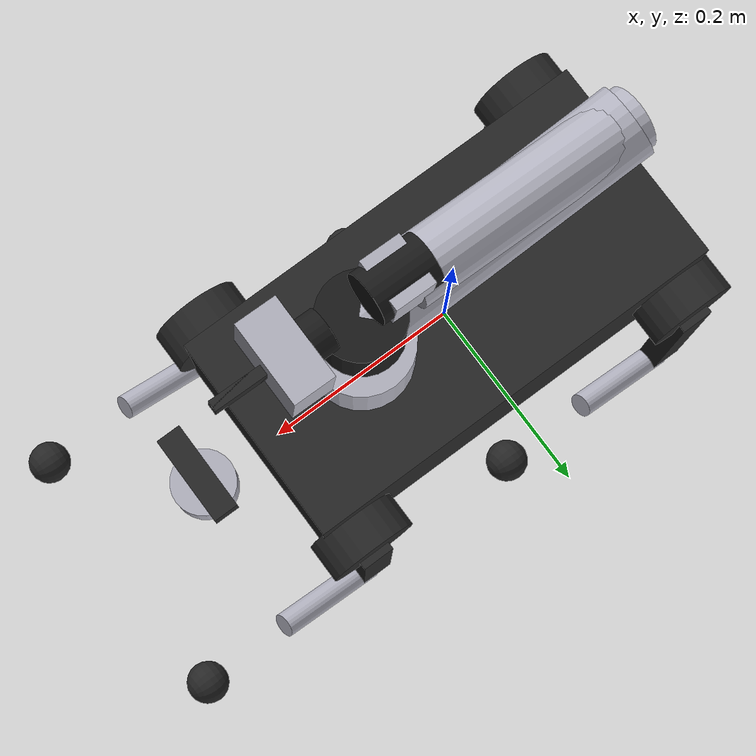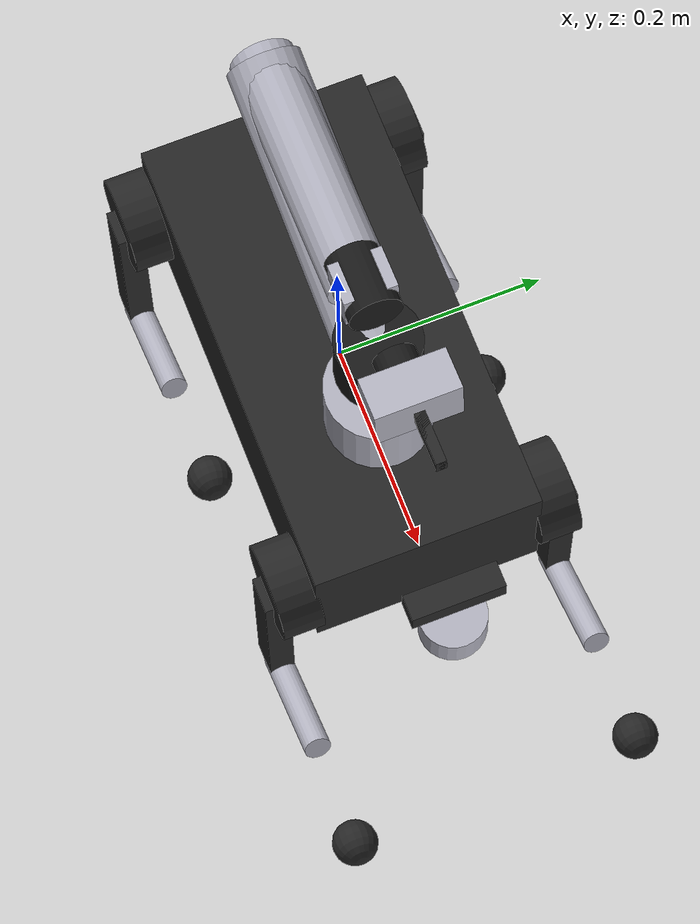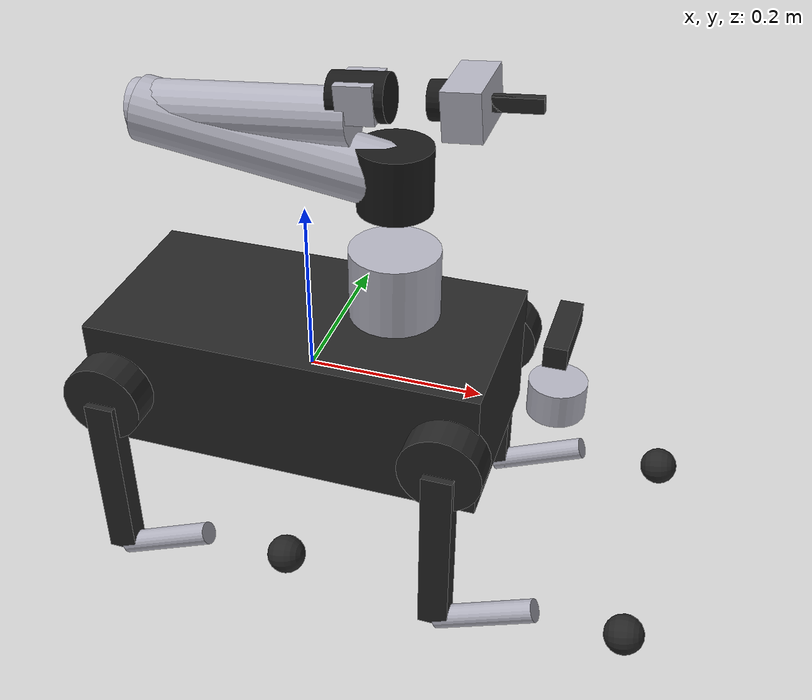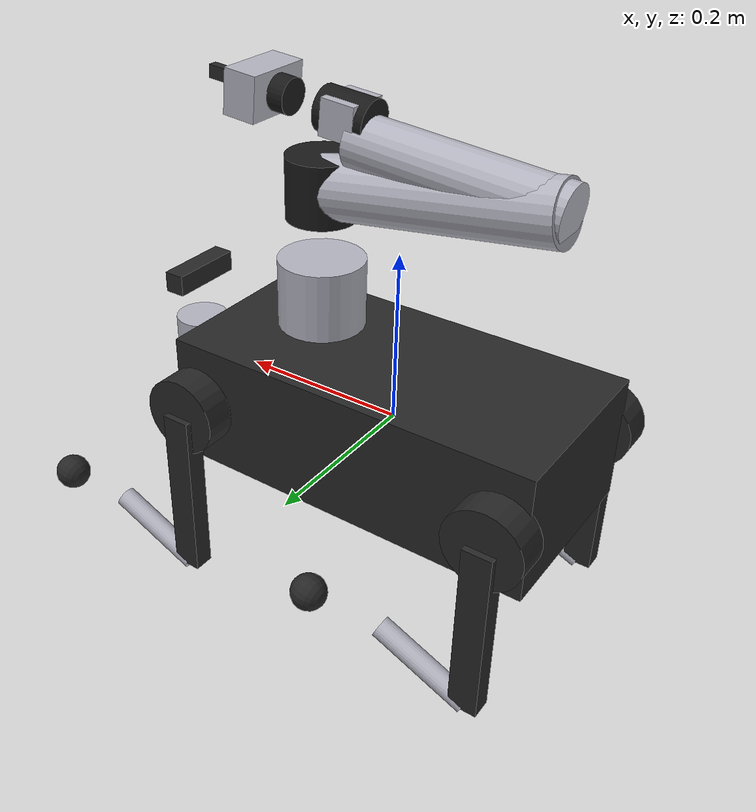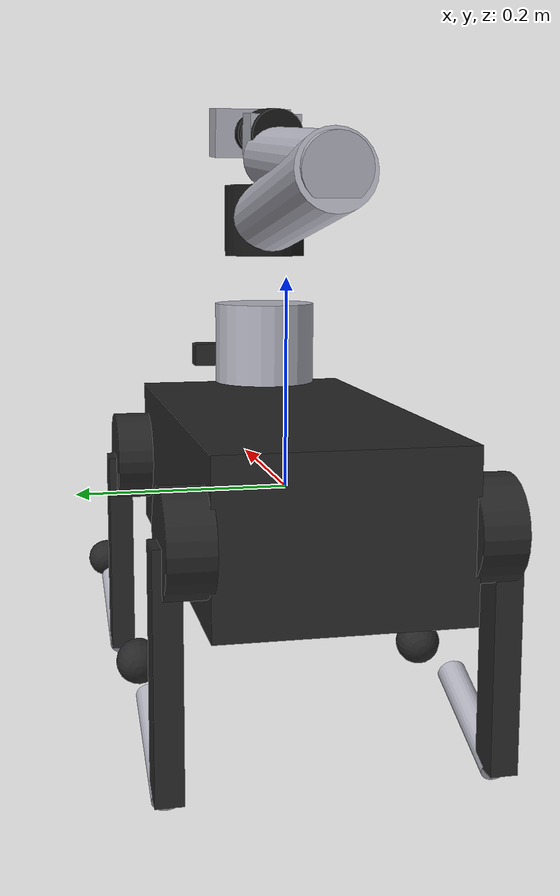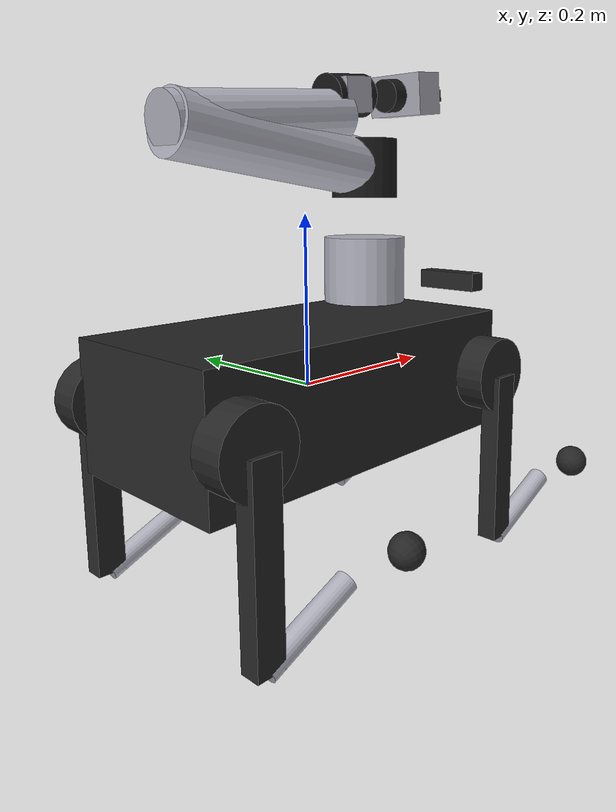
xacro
<?xml version="1.0"?>
<robot name="as2_piper" xmlns:xacro="http://www.ros.org/wiki/xacro">

  <!-- Unitree AS2 Industrial Quadruped Robot with AgileX PiPER Robotic Arm -->
  <!-- Computer Graphics and Vision Lab (CGV) - Isaac Sim 6.2.0 Integration  -->
  <!-- Unified 20-DOF Mobile Manipulator Model                              -->

  <!-- Parameters -->
  <xacro:property name="arm_mount_x" value="0.10" />
  <xacro:property name="arm_mount_y" value="0.0" />
  <xacro:property name="arm_mount_z" value="0.13" />

  <!-- Base Trunk of Unitree AS2 (Industrial Payload 18.5kg) -->
  <link name="base">
    <inertial>
      <origin xyz="0.015 0.0 -0.005" rpy="0 0 0"/>
      <mass value="18.5"/>
      <inertia ixx="0.075" ixy="0.0002" ixz="0.0005" iyy="0.210" iyz="0.00001" izz="0.235"/>
    </inertial>
    <visual>
      <origin xyz="0 0 0" rpy="0 0 0"/>
      <geometry>
        <box size="0.45 0.22 0.15"/>
      </geometry>
      <material name="matte_black">
        <color rgba="0.15 0.15 0.15 1.0"/>
      </material>
    </visual>
    <collision>
      <origin xyz="0 0 0" rpy="0 0 0"/>
      <geometry>
        <box size="0.45 0.22 0.15"/>
      </geometry>
    </collision>
  </link>

  <!-- Mounting plate for PiPER on AS2 Top Deck -->
  <joint name="as2_to_piper_mount" type="fixed">
    <origin xyz="${arm_mount_x} ${arm_mount_y} ${arm_mount_z}" rpy="0 0 0"/>
    <parent link="base"/>
    <child link="arm_base_link"/>
  </joint>

  <!-- AgileX PiPER Arm Base -->
  <link name="arm_base_link">
    <inertial>
      <origin xyz="-0.00474 0.000026 0.04145" rpy="0 0 0"/>
      <mass value="0.85"/>
      <inertia ixx="0.0012" ixy="0.0" ixz="0.0" iyy="0.0013" iyz="0.0" izz="0.0009"/>
    </inertial>
    <visual>
      <origin xyz="0 0 0" rpy="0 0 0"/>
      <geometry>
        <cylinder radius="0.05" length="0.08"/>
      </geometry>
      <material name="metallic">
        <color rgba="0.7 0.7 0.75 1.0"/>
      </material>
    </visual>
    <collision>
      <origin xyz="0 0 0" rpy="0 0 0"/>
      <geometry>
        <cylinder radius="0.05" length="0.08"/>
      </geometry>
    </collision>
  </link>

  <!-- Joint 1: Base Yaw -->
  <joint name="joint1" type="revolute">
    <origin xyz="0 0 0.123" rpy="0 0 0"/>
    <parent link="arm_base_link"/>
    <child link="link1"/>
    <axis xyz="0 0 1"/>
    <limit lower="-2.618" upper="2.168" effort="100.0" velocity="5.0"/>
  </joint>

  <link name="link1">
    <inertial>
      <origin xyz="0 0 0" rpy="0 0 0"/>
      <mass value="0.6"/>
      <inertia ixx="0.001" ixy="0" ixz="0" iyy="0.001" iyz="0" izz="0.0008"/>
    </inertial>
    <visual>
      <origin xyz="0 0 0" rpy="0 0 0"/>
      <geometry>
        <cylinder radius="0.04" length="0.07"/>
      </geometry>
      <material name="black">
        <color rgba="0.1 0.1 0.1 1.0"/>
      </material>
    </visual>
    <collision>
      <origin xyz="0 0 0" rpy="0 0 0"/>
      <geometry>
        <cylinder radius="0.04" length="0.07"/>
      </geometry>
    </collision>
  </link>

  <!-- Joint 2: Shoulder Pitch -->
  <joint name="joint2" type="revolute">
    <origin xyz="0 0 0" rpy="1.5708 -0.1359 -3.1416"/>
    <parent link="link1"/>
    <child link="link2"/>
    <axis xyz="0 0 1"/>
    <limit lower="0.0" upper="3.14" effort="100.0" velocity="5.0"/>
  </joint>

  <link name="link2">
    <inertial>
      <origin xyz="0.14 0 0" rpy="0 0 0"/>
      <mass value="0.8"/>
      <inertia ixx="0.0015" ixy="0" ixz="0" iyy="0.005" iyz="0" izz="0.005"/>
    </inertial>
    <visual>
      <origin xyz="0.14 0 0" rpy="0 1.5708 0"/>
      <geometry>
        <cylinder radius="0.035" length="0.28"/>
      </geometry>
      <material name="metallic"/>
    </visual>
    <collision>
      <origin xyz="0.14 0 0" rpy="0 1.5708 0"/>
      <geometry>
        <cylinder radius="0.035" length="0.28"/>
      </geometry>
    </collision>
  </link>

  <!-- Joint 3: Elbow Pitch -->
  <joint name="joint3" type="revolute">
    <origin xyz="0.28503 0 0" rpy="0 0 -1.7939"/>
    <parent link="link2"/>
    <child link="link3"/>
    <axis xyz="0 0 1"/>
    <limit lower="-2.967" upper="0.0" effort="100.0" velocity="5.0"/>
  </joint>

  <link name="link3">
    <inertial>
      <origin xyz="0 -0.12 0" rpy="0 0 0"/>
      <mass value="0.6"/>
      <inertia ixx="0.003" ixy="0" ixz="0" iyy="0.001" iyz="0" izz="0.003"/>
    </inertial>
    <visual>
      <origin xyz="0 -0.12 0" rpy="1.5708 0 0"/>
      <geometry>
        <cylinder radius="0.03" length="0.24"/>
      </geometry>
      <material name="metallic"/>
    </visual>
    <collision>
      <origin xyz="0 -0.12 0" rpy="1.5708 0 0"/>
      <geometry>
        <cylinder radius="0.03" length="0.24"/>
      </geometry>
    </collision>
  </link>

  <!-- Joint 4: Wrist Roll -->
  <joint name="joint4" type="revolute">
    <origin xyz="-0.021984 -0.25075 0" rpy="1.5708 0 0"/>
    <parent link="link3"/>
    <child link="link4"/>
    <axis xyz="0 0 1"/>
    <limit lower="-1.745" upper="1.745" effort="100.0" velocity="5.0"/>
  </joint>

  <link name="link4">
    <inertial>
      <origin xyz="0 0 0" rpy="0 0 0"/>
      <mass value="0.3"/>
      <inertia ixx="0.0005" ixy="0" ixz="0" iyy="0.0005" iyz="0" izz="0.0003"/>
    </inertial>
    <visual>
      <origin xyz="0 0 0" rpy="0 0 0"/>
      <geometry>
        <cylinder radius="0.025" length="0.06"/>
      </geometry>
      <material name="black"/>
    </visual>
    <collision>
      <origin xyz="0 0 0" rpy="0 0 0"/>
      <geometry>
        <cylinder radius="0.025" length="0.06"/>
      </geometry>
    </collision>
  </link>

  <!-- Joint 5: Wrist Pitch -->
  <joint name="joint5" type="revolute">
    <origin xyz="0 0 0" rpy="-1.5708 0 0"/>
    <parent link="link4"/>
    <child link="link5"/>
    <axis xyz="0 0 1"/>
    <limit lower="-1.22" upper="1.22" effort="100.0" velocity="5.0"/>
  </joint>

  <link name="link5">
    <inertial>
      <origin xyz="0 0 0" rpy="0 0 0"/>
      <mass value="0.25"/>
      <inertia ixx="0.0004" ixy="0" ixz="0" iyy="0.0004" iyz="0" izz="0.0002"/>
    </inertial>
    <visual>
      <origin xyz="0 0 0" rpy="0 0 0"/>
      <geometry>
        <box size="0.04 0.04 0.05"/>
      </geometry>
      <material name="metallic"/>
    </visual>
    <collision>
      <origin xyz="0 0 0" rpy="0 0 0"/>
      <geometry>
        <box size="0.04 0.04 0.05"/>
      </geometry>
    </collision>
  </link>

  <!-- Joint 6: Wrist Yaw -->
  <joint name="joint6" type="revolute">
    <origin xyz="0.000088 -0.091 0" rpy="1.5708 0 0"/>
    <parent link="link5"/>
    <child link="link6"/>
    <axis xyz="0 0 1"/>
    <limit lower="-2.0944" upper="2.0944" effort="100.0" velocity="3.0"/>
  </joint>

  <link name="link6">
    <inertial>
      <origin xyz="0 0 0" rpy="0 0 0"/>
      <mass value="0.2"/>
      <inertia ixx="0.0003" ixy="0" ixz="0" iyy="0.0003" iyz="0" izz="0.0002"/>
    </inertial>
    <visual>
      <origin xyz="0 0 0" rpy="0 0 0"/>
      <geometry>
        <cylinder radius="0.02" length="0.04"/>
      </geometry>
      <material name="black"/>
    </visual>
    <collision>
      <origin xyz="0 0 0" rpy="0 0 0"/>
      <geometry>
        <cylinder radius="0.02" length="0.04"/>
      </geometry>
    </collision>
  </link>

  <!-- Fixed Joint to Gripper Base -->
  <joint name="joint6_to_gripper_base" type="fixed">
    <origin xyz="0 0 0" rpy="0 0 0"/>
    <parent link="link6"/>
    <child link="gripper_base"/>
  </joint>

  <link name="gripper_base">
    <inertial>
      <origin xyz="0 0 0.02" rpy="0 0 0"/>
      <mass value="0.15"/>
      <inertia ixx="0.0002" ixy="0.0" ixz="0.0" iyy="0.0002" iyz="0.0" izz="0.0001"/>
    </inertial>
    <visual>
      <origin xyz="0 0 0.02" rpy="0 0 0"/>
      <geometry>
        <box size="0.05 0.08 0.04"/>
      </geometry>
      <material name="metallic"/>
    </visual>
    <collision>
      <origin xyz="0 0 0.02" rpy="0 0 0"/>
      <geometry>
        <box size="0.05 0.08 0.04"/>
      </geometry>
    </collision>
  </link>

  <!-- Gripper Finger 1 (Joint 7) -->
  <joint name="joint7" type="prismatic">
    <origin xyz="0 0 0.04" rpy="1.5708 0 0"/>
    <parent link="gripper_base"/>
    <child link="link7"/>
    <axis xyz="0 0 1"/>
    <limit lower="0.0" upper="0.035" effort="20.0" velocity="1.0"/>
  </joint>

  <link name="link7">
    <inertial>
      <origin xyz="0 0.025 0" rpy="0 0 0"/>
      <mass value="0.05"/>
      <inertia ixx="0.00005" ixy="0" ixz="0" iyy="0.00002" iyz="0" izz="0.00005"/>
    </inertial>
    <visual>
      <origin xyz="0 0.025 0" rpy="0 0 0"/>
      <geometry>
        <box size="0.015 0.05 0.01"/>
      </geometry>
      <material name="matte_black"/>
    </visual>
    <collision>
      <origin xyz="0 0.025 0" rpy="0 0 0"/>
      <geometry>
        <box size="0.015 0.05 0.01"/>
      </geometry>
    </collision>
  </link>

  <!-- Gripper Finger 2 (Joint 8) -->
  <joint name="joint8" type="prismatic">
    <origin xyz="0 0 0.04" rpy="1.5708 0 -3.1416"/>
    <parent link="gripper_base"/>
    <child link="link8"/>
    <axis xyz="0 0 -1"/>
    <limit lower="-0.035" upper="0.0" effort="20.0" velocity="1.0"/>
  </joint>

  <link name="link8">
    <inertial>
      <origin xyz="0 0.025 0" rpy="0 0 0"/>
      <mass value="0.05"/>
      <inertia ixx="0.00005" ixy="0" ixz="0" iyy="0.00002" iyz="0" izz="0.00005"/>
    </inertial>
    <visual>
      <origin xyz="0 0.025 0" rpy="0 0 0"/>
      <geometry>
        <box size="0.015 0.05 0.01"/>
      </geometry>
      <material name="matte_black"/>
    </visual>
    <collision>
      <origin xyz="0 0.025 0" rpy="0 0 0"/>
      <geometry>
        <box size="0.015 0.05 0.01"/>
      </geometry>
    </collision>
  </link>

  <!-- Unitree AS2 Industrial Quadruped Legs (12 DOF, 95 N.m Peak Torque)   -->

  <!-- FL Leg -->
  <link name="FL_hip">
    <inertial>
      <origin xyz="-0.0054 0.00194 -0.000105" rpy="0 0 0"/>
      <mass value="0.678"/>
      <inertia ixx="0.00048" ixy="-3.01E-06" ixz="1.11E-06" iyy="0.000884" iyz="-1.42E-06" izz="0.000596"/>
    </inertial>
    <visual>
      <origin xyz="0 0.08 0" rpy="1.5707963 0 0"/>
      <geometry><cylinder length="0.04" radius="0.046"/></geometry>
      <material name="matte_black"/>
    </visual>
    <collision>
      <origin xyz="0 0.08 0" rpy="1.5707963 0 0"/>
      <geometry><cylinder length="0.04" radius="0.046"/></geometry>
    </collision>
  </link>
  <joint name="FL_hip_joint" type="revolute">
    <origin xyz="0.1934 0.0465 0" rpy="0 0 0"/>
    <parent link="base"/>
    <child link="FL_hip"/>
    <axis xyz="1 0 0"/>
    <limit lower="-1.0472" upper="1.0472" effort="95.0" velocity="30.1"/>
  </joint>
  <link name="FL_hip_rotor">
    <inertial>
      <origin xyz="0 0 0" rpy="0 0 0"/><mass value="0.089"/>
      <inertia ixx="0.0001118" ixy="0" ixz="0" iyy="0.0000596" iyz="0" izz="0.0000596"/>
    </inertial>
  </link>
  <joint name="FL_hip_rotor_joint" type="fixed">
    <origin xyz="0.11215 0.04675 0" rpy="0 0 0"/>
    <parent link="base"/><child link="FL_hip_rotor"/>
  </joint>

  <link name="FL_thigh">
    <inertial>
      <origin xyz="-0.00374 -0.0223 -0.0327" rpy="0 0 0"/>
      <mass value="1.152"/>
      <inertia ixx="0.00584" ixy="8.72E-05" ixz="-0.000289" iyy="0.0058" iyz="0.000808" izz="0.00103"/>
    </inertial>
    <visual>
      <origin xyz="0 0 -0.1065" rpy="0 1.5707963 0"/>
      <geometry><box size="0.213 0.0245 0.034"/></geometry>
      <material name="matte_black"/>
    </visual>
    <collision>
      <origin xyz="0 0 -0.1065" rpy="0 1.5707963 0"/>
      <geometry><box size="0.213 0.0245 0.034"/></geometry>
    </collision>
  </link>
  <joint name="FL_thigh_joint" type="revolute">
    <origin xyz="0 0.0955 0" rpy="0 0 0"/>
    <parent link="FL_hip"/><child link="FL_thigh"/>
    <axis xyz="0 1 0"/>
    <limit lower="-1.5708" upper="3.4907" effort="95.0" velocity="30.1"/>
  </joint>
  <link name="FL_thigh_rotor">
    <inertial>
      <origin xyz="0 0 0" rpy="0 0 0"/><mass value="0.089"/>
      <inertia ixx="0.0000596" ixy="0" ixz="0" iyy="0.0001118" iyz="0" izz="0.0000596"/>
    </inertial>
  </link>
  <joint name="FL_thigh_rotor_joint" type="fixed">
    <origin xyz="0 -0.00015 0" rpy="0 0 0"/>
    <parent link="FL_hip"/><child link="FL_thigh_rotor"/>
  </joint>

  <link name="FL_calf">
    <inertial>
      <origin xyz="0.00548 -0.000975 -0.115" rpy="0 0 0"/>
      <mass value="0.154"/>
      <inertia ixx="0.00108" ixy="3.4E-07" ixz="1.72E-05" iyy="0.0011" iyz="8.28E-06" izz="3.29E-05"/>
    </inertial>
    <visual>
      <origin xyz="0.01 0 -0.06" rpy="0 -0.2 0"/>
      <geometry><cylinder length="0.12" radius="0.013"/></geometry>
      <material name="metallic"/>
    </visual>
    <collision>
      <origin xyz="0.01 0 -0.06" rpy="0 -0.2 0"/>
      <geometry><cylinder length="0.12" radius="0.013"/></geometry>
    </collision>
  </link>
  <joint name="FL_calf_joint" type="revolute">
    <origin xyz="0 0 -0.213" rpy="0 0 0"/>
    <parent link="FL_thigh"/><child link="FL_calf"/>
    <axis xyz="0 1 0"/>
    <limit lower="-2.7227" upper="-0.83776" effort="95.0" velocity="15.70"/>
  </joint>
  <link name="FL_calflower">
    <collision><origin xyz="0 0 0"/><geometry><cylinder length="0.065" radius="0.011"/></geometry></collision>
  </link>
  <joint name="FL_calflower_joint" type="fixed">
    <origin xyz="0.020 0 -0.148" rpy="0 0.05 0"/>
    <parent link="FL_calf"/><child link="FL_calflower"/>
  </joint>
  <link name="FL_calflower1">
    <collision><origin xyz="0 0 0"/><geometry><cylinder length="0.03" radius="0.0155"/></geometry></collision>
  </link>
  <joint name="FL_calflower1_joint" type="fixed">
    <origin xyz="-0.01 0 -0.04" rpy="0 0.48 0"/>
    <parent link="FL_calflower"/><child link="FL_calflower1"/>
  </joint>
  <link name="FL_calf_rotor">
    <inertial><origin xyz="0 0 0"/><mass value="0.089"/><inertia ixx="0.0000596" ixy="0" ixz="0" iyy="0.0001118" iyz="0" izz="0.0000596"/></inertial>
  </link>
  <joint name="FL_calf_rotor_joint" type="fixed">
    <origin xyz="0 -0.03235 0" rpy="0 0 0"/>
    <parent link="FL_thigh"/><child link="FL_calf_rotor"/>
  </joint>
  <link name="FL_foot">
    <inertial><origin xyz="0 0 0"/><mass value="0.04"/><inertia ixx="9.6E-06" ixy="0" ixz="0" iyy="9.6E-06" iyz="0" izz="9.6E-06"/></inertial>
    <visual><origin xyz="-0.002 0 0"/><geometry><sphere radius="0.022"/></geometry><material name="matte_black"/></visual>
    <collision><origin xyz="-0.002 0 0"/><geometry><sphere radius="0.022"/></geometry></collision>
  </link>
  <joint name="FL_foot_joint" type="fixed" dont_collapse="true">
    <origin xyz="0 0 -0.213" rpy="0 0 0"/>
    <parent link="FL_calf"/><child link="FL_foot"/>
  </joint>

  <!-- FR Leg -->
  <link name="FR_hip">
    <inertial>
      <origin xyz="-0.0054 -0.00194 -0.000105" rpy="0 0 0"/><mass value="0.678"/>
      <inertia ixx="0.00048" ixy="3.01E-06" ixz="1.11E-06" iyy="0.000884" iyz="-1.42E-06" izz="0.000596"/>
    </inertial>
    <visual>
      <origin xyz="0 -0.08 0" rpy="1.5707963 0 0"/><geometry><cylinder length="0.04" radius="0.046"/></geometry>
      <material name="matte_black"/>
    </visual>
    <collision>
      <origin xyz="0 -0.08 0" rpy="1.5707963 0 0"/><geometry><cylinder length="0.04" radius="0.046"/></geometry>
    </collision>
  </link>
  <joint name="FR_hip_joint" type="revolute">
    <origin xyz="0.1934 -0.0465 0" rpy="0 0 0"/>
    <parent link="base"/><child link="FR_hip"/>
    <axis xyz="1 0 0"/><limit lower="-1.0472" upper="1.0472" effort="95.0" velocity="30.1"/>
  </joint>
  <link name="FR_hip_rotor">
    <inertial><origin xyz="0 0 0"/><mass value="0.089"/><inertia ixx="0.0001118" ixy="0" ixz="0" iyy="0.0000596" iyz="0" izz="0.0000596"/></inertial>
  </link>
  <joint name="FR_hip_rotor_joint" type="fixed">
    <origin xyz="0.11215 -0.04675 0" rpy="0 0 0"/>
    <parent link="base"/><child link="FR_hip_rotor"/>
  </joint>

  <link name="FR_thigh">
    <inertial>
      <origin xyz="-0.00374 0.0223 -0.0327" rpy="0 0 0"/><mass value="1.152"/>
      <inertia ixx="0.00584" ixy="-8.72E-05" ixz="-0.000289" iyy="0.0058" iyz="-0.000808" izz="0.00103"/>
    </inertial>
    <visual>
      <origin xyz="0 0 -0.1065" rpy="0 1.5707963 0"/><geometry><box size="0.213 0.0245 0.034"/></geometry>
      <material name="matte_black"/>
    </visual>
    <collision>
      <origin xyz="0 0 -0.1065" rpy="0 1.5707963 0"/><geometry><box size="0.213 0.0245 0.034"/></geometry>
    </collision>
  </link>
  <joint name="FR_thigh_joint" type="revolute">
    <origin xyz="0 -0.0955 0" rpy="0 0 0"/>
    <parent link="FR_hip"/><child link="FR_thigh"/>
    <axis xyz="0 1 0"/><limit lower="-1.5708" upper="3.4907" effort="95.0" velocity="30.1"/>
  </joint>
  <link name="FR_thigh_rotor">
    <inertial><origin xyz="0 0 0"/><mass value="0.089"/><inertia ixx="0.0000596" ixy="0" ixz="0" iyy="0.0001118" iyz="0" izz="0.0000596"/></inertial>
  </link>
  <joint name="FR_thigh_rotor_joint" type="fixed">
    <origin xyz="0 0.00015 0" rpy="0 0 0"/>
    <parent link="FR_hip"/><child link="FR_thigh_rotor"/>
  </joint>

  <link name="FR_calf">
    <inertial>
      <origin xyz="0.00548 0.000975 -0.115" rpy="0 0 0"/><mass value="0.154"/>
      <inertia ixx="0.00108" ixy="-3.4E-07" ixz="1.72E-05" iyy="0.0011" iyz="-8.28E-06" izz="3.29E-05"/>
    </inertial>
    <visual>
      <origin xyz="0.01 0 -0.06" rpy="0 -0.2 0"/><geometry><cylinder length="0.12" radius="0.013"/></geometry>
      <material name="metallic"/>
    </visual>
    <collision>
      <origin xyz="0.01 0 -0.06" rpy="0 -0.2 0"/><geometry><cylinder length="0.12" radius="0.013"/></geometry>
    </collision>
  </link>
  <joint name="FR_calf_joint" type="revolute">
    <origin xyz="0 0 -0.213" rpy="0 0 0"/>
    <parent link="FR_thigh"/><child link="FR_calf"/>
    <axis xyz="0 1 0"/><limit lower="-2.7227" upper="-0.83776" effort="95.0" velocity="15.70"/>
  </joint>
  <link name="FR_calflower">
    <collision><origin xyz="0 0 0"/><geometry><cylinder length="0.065" radius="0.011"/></geometry></collision>
  </link>
  <joint name="FR_calflower_joint" type="fixed">
    <origin xyz="0.020 0 -0.148" rpy="0 0.05 0"/>
    <parent link="FR_calf"/><child link="FR_calflower"/>
  </joint>
  <link name="FR_calflower1">
    <collision><origin xyz="0 0 0"/><geometry><cylinder length="0.03" radius="0.0155"/></geometry></collision>
  </link>
  <joint name="FR_calflower1_joint" type="fixed">
    <origin xyz="-0.01 0 -0.04" rpy="0 0.48 0"/>
    <parent link="FR_calflower"/><child link="FR_calflower1"/>
  </joint>
  <link name="FR_calf_rotor">
    <inertial><origin xyz="0 0 0"/><mass value="0.089"/><inertia ixx="0.0000596" ixy="0" ixz="0" iyy="0.0001118" iyz="0" izz="0.0000596"/></inertial>
  </link>
  <joint name="FR_calf_rotor_joint" type="fixed">
    <origin xyz="0 0.03235 0" rpy="0 0 0"/>
    <parent link="FR_thigh"/><child link="FR_calf_rotor"/>
  </joint>
  <link name="FR_foot">
    <inertial><origin xyz="0 0 0"/><mass value="0.04"/><inertia ixx="9.6E-06" ixy="0" ixz="0" iyy="9.6E-06" iyz="0" izz="9.6E-06"/></inertial>
    <visual><origin xyz="-0.002 0 0"/><geometry><sphere radius="0.022"/></geometry><material name="matte_black"/></visual>
    <collision><origin xyz="-0.002 0 0"/><geometry><sphere radius="0.022"/></geometry></collision>
  </link>
  <joint name="FR_foot_joint" type="fixed" dont_collapse="true">
    <origin xyz="0 0 -0.213" rpy="0 0 0"/>
    <parent link="FR_calf"/><child link="FR_foot"/>
  </joint>

  <!-- RL Leg -->
  <link name="RL_hip">
    <inertial>
      <origin xyz="0.0054 0.00194 -0.000105" rpy="0 0 0"/><mass value="0.678"/>
      <inertia ixx="0.00048" ixy="3.01E-06" ixz="-1.11E-06" iyy="0.000884" iyz="-1.42E-06" izz="0.000596"/>
    </inertial>
    <visual>
      <origin xyz="0 0.08 0" rpy="1.5707963 0 0"/><geometry><cylinder length="0.04" radius="0.046"/></geometry>
      <material name="matte_black"/>
    </visual>
    <collision>
      <origin xyz="0 0.08 0" rpy="1.5707963 0 0"/><geometry><cylinder length="0.04" radius="0.046"/></geometry>
    </collision>
  </link>
  <joint name="RL_hip_joint" type="revolute">
    <origin xyz="-0.1934 0.0465 0" rpy="0 0 0"/>
    <parent link="base"/><child link="RL_hip"/>
    <axis xyz="1 0 0"/><limit lower="-1.0472" upper="1.0472" effort="95.0" velocity="30.1"/>
  </joint>
  <link name="RL_hip_rotor">
    <inertial><origin xyz="0 0 0"/><mass value="0.089"/><inertia ixx="0.0001118" ixy="0" ixz="0" iyy="0.0000596" iyz="0" izz="0.0000596"/></inertial>
  </link>
  <joint name="RL_hip_rotor_joint" type="fixed">
    <origin xyz="-0.11215 0.04675 0" rpy="0 0 0"/>
    <parent link="base"/><child link="RL_hip_rotor"/>
  </joint>

  <link name="RL_thigh">
    <inertial>
      <origin xyz="-0.00374 -0.0223 -0.0327" rpy="0 0 0"/><mass value="1.152"/>
      <inertia ixx="0.00584" ixy="8.72E-05" ixz="-0.000289" iyy="0.0058" iyz="0.000808" izz="0.00103"/>
    </inertial>
    <visual>
      <origin xyz="0 0 -0.1065" rpy="0 1.5707963 0"/><geometry><box size="0.213 0.0245 0.034"/></geometry>
      <material name="matte_black"/>
    </visual>
    <collision>
      <origin xyz="0 0 -0.1065" rpy="0 1.5707963 0"/><geometry><box size="0.213 0.0245 0.034"/></geometry>
    </collision>
  </link>
  <joint name="RL_thigh_joint" type="revolute">
    <origin xyz="0 0.0955 0" rpy="0 0 0"/>
    <parent link="RL_hip"/><child link="RL_thigh"/>
    <axis xyz="0 1 0"/><limit lower="-0.5236" upper="4.5379" effort="95.0" velocity="30.1"/>
  </joint>
  <link name="RL_thigh_rotor">
    <inertial><origin xyz="0 0 0"/><mass value="0.089"/><inertia ixx="0.0000596" ixy="0" ixz="0" iyy="0.0001118" iyz="0" izz="0.0000596"/></inertial>
  </link>
  <joint name="RL_thigh_rotor_joint" type="fixed">
    <origin xyz="0 -0.00015 0" rpy="0 0 0"/>
    <parent link="RL_hip"/><child link="RL_thigh_rotor"/>
  </joint>

  <link name="RL_calf">
    <inertial>
      <origin xyz="0.00548 -0.000975 -0.115" rpy="0 0 0"/><mass value="0.154"/>
      <inertia ixx="0.00108" ixy="3.4E-07" ixz="1.72E-05" iyy="0.0011" iyz="8.28E-06" izz="3.29E-05"/>
    </inertial>
    <visual>
      <origin xyz="0.01 0 -0.06" rpy="0 -0.2 0"/><geometry><cylinder length="0.12" radius="0.013"/></geometry>
      <material name="metallic"/>
    </visual>
    <collision>
      <origin xyz="0.01 0 -0.06" rpy="0 -0.2 0"/><geometry><cylinder length="0.12" radius="0.013"/></geometry>
    </collision>
  </link>
  <joint name="RL_calf_joint" type="revolute">
    <origin xyz="0 0 -0.213" rpy="0 0 0"/>
    <parent link="RL_thigh"/><child link="RL_calf"/>
    <axis xyz="0 1 0"/><limit lower="-2.7227" upper="-0.83776" effort="95.0" velocity="15.70"/>
  </joint>
  <link name="RL_calflower">
    <collision><origin xyz="0 0 0"/><geometry><cylinder length="0.065" radius="0.011"/></geometry></collision>
  </link>
  <joint name="RL_calflower_joint" type="fixed">
    <origin xyz="0.020 0 -0.148" rpy="0 0.05 0"/>
    <parent link="RL_calf"/><child link="RL_calflower"/>
  </joint>
  <link name="RL_calflower1">
    <collision><origin xyz="0 0 0"/><geometry><cylinder length="0.03" radius="0.0155"/></geometry></collision>
  </link>
  <joint name="RL_calflower1_joint" type="fixed">
    <origin xyz="-0.01 0 -0.04" rpy="0 0.48 0"/>
    <parent link="RL_calflower"/><child link="RL_calflower1"/>
  </joint>
  <link name="RL_calf_rotor">
    <inertial><origin xyz="0 0 0"/><mass value="0.089"/><inertia ixx="0.0000596" ixy="0" ixz="0" iyy="0.0001118" iyz="0" izz="0.0000596"/></inertial>
  </link>
  <joint name="RL_calf_rotor_joint" type="fixed">
    <origin xyz="0 -0.03235 0" rpy="0 0 0"/>
    <parent link="RL_thigh"/><child link="RL_calf_rotor"/>
  </joint>
  <link name="RL_foot">
    <inertial><origin xyz="0 0 0"/><mass value="0.04"/><inertia ixx="9.6E-06" ixy="0" ixz="0" iyy="9.6E-06" iyz="0" izz="9.6E-06"/></inertial>
    <visual><origin xyz="-0.002 0 0"/><geometry><sphere radius="0.022"/></geometry><material name="matte_black"/></visual>
    <collision><origin xyz="-0.002 0 0"/><geometry><sphere radius="0.022"/></geometry></collision>
  </link>
  <joint name="RL_foot_joint" type="fixed" dont_collapse="true">
    <origin xyz="0 0 -0.213" rpy="0 0 0"/>
    <parent link="RL_calf"/><child link="RL_foot"/>
  </joint>

  <!-- RR Leg -->
  <link name="RR_hip">
    <inertial>
      <origin xyz="0.0054 -0.00194 -0.000105" rpy="0 0 0"/><mass value="0.678"/>
      <inertia ixx="0.00048" ixy="-3.01E-06" ixz="-1.11E-06" iyy="0.000884" iyz="1.42E-06" izz="0.000596"/>
    </inertial>
    <visual>
      <origin xyz="0 -0.08 0" rpy="1.5707963 0 0"/><geometry><cylinder length="0.04" radius="0.046"/></geometry>
      <material name="matte_black"/>
    </visual>
    <collision>
      <origin xyz="0 -0.08 0" rpy="1.5707963 0 0"/><geometry><cylinder length="0.04" radius="0.046"/></geometry>
    </collision>
  </link>
  <joint name="RR_hip_joint" type="revolute">
    <origin xyz="-0.1934 -0.0465 0" rpy="0 0 0"/>
    <parent link="base"/><child link="RR_hip"/>
    <axis xyz="1 0 0"/><limit lower="-1.0472" upper="1.0472" effort="95.0" velocity="30.1"/>
  </joint>
  <link name="RR_hip_rotor">
    <inertial><origin xyz="0 0 0"/><mass value="0.089"/><inertia ixx="0.0001118" ixy="0" ixz="0" iyy="0.0000596" iyz="0" izz="0.0000596"/></inertial>
  </link>
  <joint name="RR_hip_rotor_joint" type="fixed">
    <origin xyz="-0.11215 -0.04675 0" rpy="0 0 0"/>
    <parent link="base"/><child link="RR_hip_rotor"/>
  </joint>

  <link name="RR_thigh">
    <inertial>
      <origin xyz="-0.00374 0.0223 -0.0327" rpy="0 0 0"/><mass value="1.152"/>
      <inertia ixx="0.00584" ixy="-8.72E-05" ixz="-0.000289" iyy="0.0058" iyz="-0.000808" izz="0.00103"/>
    </inertial>
    <visual>
      <origin xyz="0 0 -0.1065" rpy="0 1.5707963 0"/><geometry><box size="0.213 0.0245 0.034"/></geometry>
      <material name="matte_black"/>
    </visual>
    <collision>
      <origin xyz="0 0 -0.1065" rpy="0 1.5707963 0"/><geometry><box size="0.213 0.0245 0.034"/></geometry>
    </collision>
  </link>
  <joint name="RR_thigh_joint" type="revolute">
    <origin xyz="0 -0.0955 0" rpy="0 0 0"/>
    <parent link="RR_hip"/><child link="RR_thigh"/>
    <axis xyz="0 1 0"/><limit lower="-0.5236" upper="4.5379" effort="95.0" velocity="30.1"/>
  </joint>
  <link name="RR_thigh_rotor">
    <inertial><origin xyz="0 0 0"/><mass value="0.089"/><inertia ixx="0.0000596" ixy="0" ixz="0" iyy="0.0001118" iyz="0" izz="0.0000596"/></inertial>
  </link>
  <joint name="RR_thigh_rotor_joint" type="fixed">
    <origin xyz="0 0.00015 0" rpy="0 0 0"/>
    <parent link="RR_hip"/><child link="RR_thigh_rotor"/>
  </joint>

  <link name="RR_calf">
    <inertial>
      <origin xyz="0.00548 0.000975 -0.115" rpy="0 0 0"/><mass value="0.154"/>
      <inertia ixx="0.00108" ixy="-3.4E-07" ixz="1.72E-05" iyy="0.0011" iyz="-8.28E-06" izz="3.29E-05"/>
    </inertial>
    <visual>
      <origin xyz="0.01 0 -0.06" rpy="0 -0.2 0"/><geometry><cylinder length="0.12" radius="0.013"/></geometry>
      <material name="metallic"/>
    </visual>
    <collision>
      <origin xyz="0.01 0 -0.06" rpy="0 -0.2 0"/><geometry><cylinder length="0.12" radius="0.013"/></geometry>
    </collision>
  </link>
  <joint name="RR_calf_joint" type="revolute">
    <origin xyz="0 0 -0.213" rpy="0 0 0"/>
    <parent link="RR_thigh"/><child link="RR_calf"/>
    <axis xyz="0 1 0"/><limit lower="-2.7227" upper="-0.83776" effort="95.0" velocity="15.70"/>
  </joint>
  <link name="RR_calflower">
    <collision><origin xyz="0 0 0"/><geometry><cylinder length="0.065" radius="0.011"/></geometry></collision>
  </link>
  <joint name="RR_calflower_joint" type="fixed">
    <origin xyz="0.020 0 -0.148" rpy="0 0.05 0"/>
    <parent link="RR_calf"/><child link="RR_calflower"/>
  </joint>
  <link name="RR_calflower1">
    <collision><origin xyz="0 0 0"/><geometry><cylinder length="0.03" radius="0.0155"/></geometry></collision>
  </link>
  <joint name="RR_calflower1_joint" type="fixed">
    <origin xyz="-0.01 0 -0.04" rpy="0 0.48 0"/>
    <parent link="RR_calflower"/><child link="RR_calflower1"/>
  </joint>
  <link name="RR_calf_rotor">
    <inertial><origin xyz="0 0 0"/><mass value="0.089"/><inertia ixx="0.0000596" ixy="0" ixz="0" iyy="0.0001118" iyz="0" izz="0.0000596"/></inertial>
  </link>
  <joint name="RR_calf_rotor_joint" type="fixed">
    <origin xyz="0 0.03235 0" rpy="0 0 0"/>
    <parent link="RR_thigh"/><child link="RR_calf_rotor"/>
  </joint>
  <link name="RR_foot">
    <inertial><origin xyz="0 0 0"/><mass value="0.04"/><inertia ixx="9.6E-06" ixy="0" ixz="0" iyy="9.6E-06" iyz="0" izz="9.6E-06"/></inertial>
    <visual><origin xyz="-0.002 0 0"/><geometry><sphere radius="0.022"/></geometry><material name="matte_black"/></visual>
    <collision><origin xyz="-0.002 0 0"/><geometry><sphere radius="0.022"/></geometry></collision>
  </link>
  <joint name="RR_foot_joint" type="fixed" dont_collapse="true">
    <origin xyz="0 0 -0.213" rpy="0 0 0"/>
    <parent link="RR_calf"/><child link="RR_foot"/>
  </joint>

  <!-- Sensors & Auxiliary Mounts (RGB-D Camera, 3D LiDAR, Chin Radar, IMU) -->
  <link name="front_camera">
    <inertial><origin xyz="0 0 0"/><mass value="0.072"/><inertia ixx="1.5E-05" ixy="0" ixz="0" iyy="1.5E-05" iyz="0" izz="1.5E-05"/></inertial>
    <visual><origin xyz="-0.015 0 0"/><geometry><box size="0.025 0.090 0.025"/></geometry><material name="matte_black"/></visual>
  </link>
  <joint name="front_camera_joint" type="fixed">
    <origin xyz="0.30 0.0 0.10" rpy="0 0 0"/>
    <parent link="base"/><child link="front_camera"/>
  </joint>

  <link name="lidar_link">
    <inertial><origin xyz="0 0 -0.025"/><mass value="0.18"/><inertia ixx="4.5E-05" ixy="0" ixz="0" iyy="4.5E-05" iyz="0" izz="5.5E-05"/></inertial>
    <visual><origin xyz="0 0 -0.025"/><geometry><cylinder radius="0.032" length="0.040"/></geometry><material name="metallic"/></visual>
  </link>
  <joint name="lidar_joint" type="fixed">
    <origin xyz="0.285 0.0 0.045" rpy="0 0 0"/>
    <parent link="base"/><child link="lidar_link"/>
  </joint>

  <link name="imu">
    <inertial><origin xyz="0 0 0"/><mass value="0.01"/><inertia ixx="1E-06" ixy="0" ixz="0" iyy="1E-06" iyz="0" izz="1E-06"/></inertial>
  </link>
  <joint name="imu_joint" type="fixed">
    <origin xyz="-0.02557 0 0.04232" rpy="0 0 0"/>
    <parent link="base"/><child link="imu"/>
  </joint>

  <link name="radar">
    <inertial><origin xyz="0 0 0"/><mass value="0.01"/><inertia ixx="1E-06" ixy="0" ixz="0" iyy="1E-06" iyz="0" izz="1E-06"/></inertial>
  </link>
  <joint name="radar_joint" type="fixed">
    <origin xyz="0.28945 0 -0.046825" rpy="0 2.8782 0"/>
    <parent link="base"/><child link="radar"/>
  </joint>

</robot>
